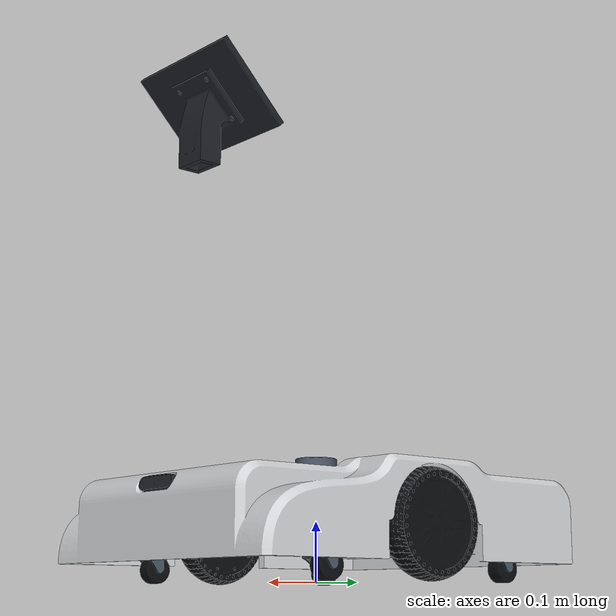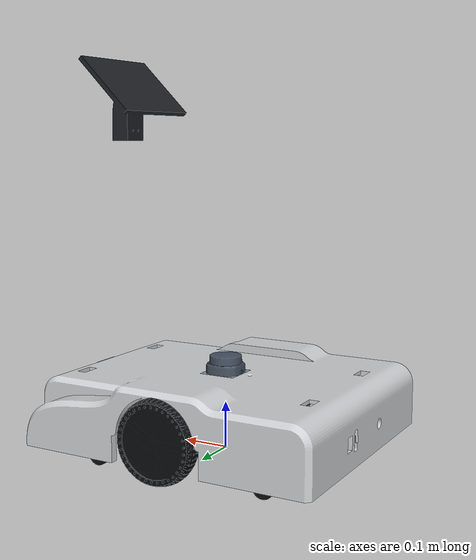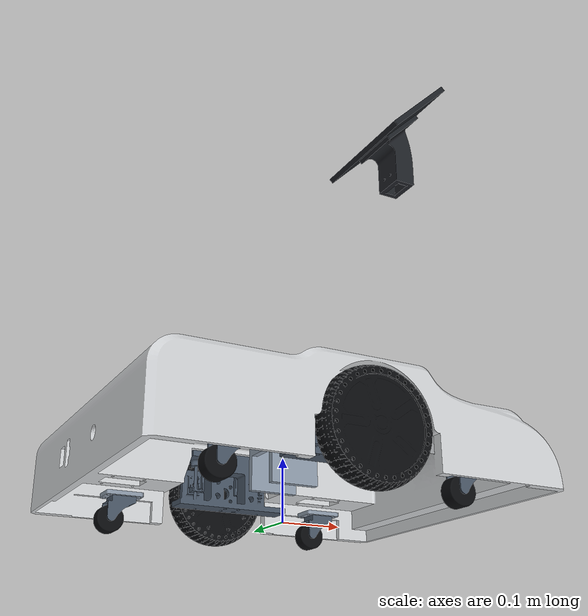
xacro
<?xml version="1.0"?>
<!-- Generated by prepare_physics_urdf.py; edit source Xacro and physics.json. -->
<robot xmlns:xacro="http://www.ros.org/wiki/xacro" name="capstone_amr">

  <xacro:arg name="mesh_prefix" default="../meshes/visual"/>
  <xacro:property name="mesh_prefix" value="$(arg mesh_prefix)"/>

  <xacro:property name="wheel_radius" value="0.086"/>
  <xacro:property name="wheel_width" value="0.0446"/>
  <xacro:property name="wheel_track" value="0.529"/>
  <xacro:property name="drive_axle_x" value="0.0"/>
  <xacro:property name="drive_wheel_mesh_scale" value="0.001004086"/>
  <xacro:property name="drive_wheel_mesh_y" value="0.029118494"/>

  <!-- v28 base_link inertia box, retained until the robot is reweighed. -->
  <xacro:property name="base_inertia_length" value="0.640"/>
  <xacro:property name="base_inertia_width" value="0.520"/>
  <xacro:property name="base_inertia_height" value="0.085"/>
  <xacro:property name="base_inertia_center_z" value="-0.0115"/>

  <xacro:property name="housing_length" value="0.656"/>
  <xacro:property name="housing_width" value="0.556"/>
  <xacro:property name="housing_bottom_z" value="-0.055"/>
  <xacro:property name="housing_top_z" value="0.080"/>

  <xacro:property name="camera_x" value="0.320488"/>
  <xacro:property name="camera_y" value="0.025"/>
  <xacro:property name="camera_z" value="0.061017"/>
  <xacro:property name="camera_pitch" value="${-12.0 * pi / 180.0}"/>

  <xacro:property name="chassis_mass" value="12.8"/>
  <xacro:property name="drive_wheel_mass" value="2.2"/>
  <xacro:property name="caster_mount_mass" value="0.05"/>
  <xacro:property name="caster_frame_mass" value="0.10"/>
  <xacro:property name="caster_wheel_mass" value="0.05"/>

  <!-- Placement rechecked against AMR_MASTER_Linear v80.step; unchanged from v23. -->
  <xacro:property name="lidar_mount_origin_z" value="-0.029"/>
  <xacro:property name="lidar_from_mount_z" value="0.137605"/>

  <material name="aluminium">
    <color rgba="0.55 0.60 0.66 1"/>
  </material>
  <material name="dark_metal">
    <color rgba="0.28 0.33 0.39 1"/>
  </material>
  <material name="z10t_body">
    <color rgba="0.12 0.13 0.15 1"/>
  </material>
  <material name="housing">
    <color rgba="0.82 0.83 0.84 1"/>
  </material>
  <material name="rubber">
    <color rgba="0.04 0.045 0.055 1"/>
  </material>

  <xacro:macro name="box_inertial" params="mass x y z origin_xyz">
    <inertial>
      <origin xyz="${origin_xyz}" rpy="0 0 0"/>
      <mass value="${mass}"/>
      <inertia
        ixx="${mass * (y*y + z*z) / 12.0}" ixy="0" ixz="0"
        iyy="${mass * (x*x + z*z) / 12.0}" iyz="0"
        izz="${mass * (x*x + y*y) / 12.0}"/>
    </inertial>
  </xacro:macro>

  <xacro:macro name="wheel_inertial" params="mass radius width">
    <inertial>
      <origin xyz="0 0 0" rpy="0 0 0"/>
      <mass value="${mass}"/>
      <inertia
        ixx="${mass * (3*radius*radius + width*width) / 12.0}" ixy="0" ixz="0"
        iyy="${mass * radius*radius / 2.0}" iyz="0"
        izz="${mass * (3*radius*radius + width*width) / 12.0}"/>
    </inertial>
  </xacro:macro>

  <xacro:macro name="frame_box" params="x y z sx sy sz">
    <collision>
      <origin xyz="${x} ${y} ${z}" rpy="0 0 0"/>
      <geometry><box size="${sx} ${sy} ${sz}"/></geometry>
    </collision>
  </xacro:macro>

  <link name="base_footprint"/>

  <link name="base_link">
    <xacro:box_inertial
      mass="${chassis_mass}"
      x="${base_inertia_length}" y="${base_inertia_width}" z="${base_inertia_height}"
      origin_xyz="0 0 ${base_inertia_center_z}"/>
    <!-- These four STLs are already expressed in the base_link CAD frame.
         chassis.stl also carries the rear XT90 connector. -->
    <visual>
      <origin xyz="0 0 0" rpy="0 0 0"/>
      <geometry>
        <mesh filename="${mesh_prefix}/chassis.stl" scale="0.001 0.001 0.001"/>
      </geometry>
      <material name="aluminium"/>
    </visual>
    <!-- Linear-guide suspension brackets of both drive wheels; rigid in this model. -->
    <visual>
      <origin xyz="0 0 0" rpy="0 0 0"/>
      <geometry>
        <mesh filename="${mesh_prefix}/drive_suspension.stl" scale="0.001 0.001 0.001"/>
      </geometry>
      <material name="dark_metal"/>
    </visual>
    <visual>
      <origin xyz="0 0 0" rpy="0 0 0"/>
      <geometry>
        <mesh filename="${mesh_prefix}/z10t.stl" scale="0.001 0.001 0.001"/>
      </geometry>
      <material name="z10t_body"/>
    </visual>
    <visual>
      <origin xyz="0 0 0" rpy="0 0 0"/>
      <geometry>
        <mesh filename="${mesh_prefix}/housing.stl" scale="0.001 0.001 0.001"/>
      </geometry>
      <material name="housing"/>
    </visual>
    <!-- Camera geometry is lumped into base_link like the LiDAR;
         gemini2.stl is expressed in the camera_link frame. -->
    <visual>
      <origin xyz="${camera_x} ${camera_y} ${camera_z}" rpy="0 ${camera_pitch} 0"/>
      <geometry>
        <mesh filename="${mesh_prefix}/gemini2.stl" scale="0.001 0.001 0.001"/>
      </geometry>
      <material name="z10t_body"/>
    </visual>
    <!-- LiDAR geometry is lumped into base_link together with its mass. -->
    <visual>
      <origin xyz="0 0 ${lidar_mount_origin_z}" rpy="0 0 0"/>
      <geometry>
        <mesh filename="${mesh_prefix}/lidar_mount.stl" scale="0.001 0.001 0.001"/>
      </geometry>
      <material name="aluminium"/>
    </visual>
    <visual>
      <origin xyz="0 0 ${lidar_mount_origin_z + lidar_from_mount_z}" rpy="0 0 0"/>
      <geometry>
        <mesh filename="${mesh_prefix}/lidar_body.stl" scale="0.001 0.001 0.001"/>
      </geometry>
      <material name="dark_metal"/>
    </visual>
    <collision>
      <origin xyz="0 0 ${(housing_bottom_z + housing_top_z) / 2.0}" rpy="0 0 0"/>
      <geometry>
        <box size="${housing_length} ${housing_width} ${housing_top_z - housing_bottom_z}"/>
      </geometry>
    </collision>
    <!-- Fenders over the drive wheels. -->
    <xacro:frame_box x="0" y="0.229" z="0.090" sx="0.228" sy="0.098" sz="0.020"/>
    <xacro:frame_box x="0" y="-0.229" z="0.090" sx="0.228" sy="0.098" sz="0.020"/>
    <!-- 2020 uprights. They cross the LiDAR scan plane at Z = 108.605 mm. -->
    <xacro:frame_box x="0.270" y="0.1326" z="0.066" sx="0.020" sy="0.040" sz="0.200"/>
    <xacro:frame_box x="0.270" y="-0.1326" z="0.066" sx="0.020" sy="0.040" sz="0.200"/>
    <xacro:frame_box x="-0.260" y="0.1326" z="0.066" sx="0.020" sy="0.040" sz="0.200"/>
    <xacro:frame_box x="-0.260" y="-0.1326" z="0.066" sx="0.020" sy="0.040" sz="0.200"/>
    <!-- Top side rails, front cross member and Z10T mast. -->
    <xacro:frame_box x="0.005" y="0.1326" z="0.156" sx="0.510" sy="0.040" sz="0.020"/>
    <xacro:frame_box x="0.005" y="-0.1326" z="0.156" sx="0.510" sy="0.040" sz="0.020"/>
    <xacro:frame_box x="0.240" y="0" z="0.176" sx="0.040" sy="0.3107" sz="0.020"/>
    <xacro:frame_box x="0.250" y="0" z="0.421" sx="0.020" sy="0.040" sz="0.470"/>
    <!-- Z10T mount below the body, then the Z10T body bounds. -->
    <xacro:frame_box x="0.2372" y="0" z="0.6035" sx="0.0764" sy="0.100" sz="0.055"/>
    <xacro:frame_box x="0.2308" y="0" z="0.6925" sx="0.123" sy="0.233" sz="0.123"/>
    <!-- v3 mount: two extended walls, two upper side walls, and top plate.
         Small counterbored screw holes are omitted from collision geometry. -->
    <collision>
      <origin xyz="0 -0.035 ${lidar_mount_origin_z + 0.0475}" rpy="0 0 0"/>
      <geometry><box size="0.080 0.010 0.105"/></geometry>
    </collision>
    <collision>
      <origin xyz="0 0.035 ${lidar_mount_origin_z + 0.0475}" rpy="0 0 0"/>
      <geometry><box size="0.080 0.010 0.105"/></geometry>
    </collision>
    <collision>
      <origin xyz="-0.035 0 ${lidar_mount_origin_z + 0.075}" rpy="0 0 0"/>
      <geometry><box size="0.010 0.060 0.050"/></geometry>
    </collision>
    <collision>
      <origin xyz="0.035 0 ${lidar_mount_origin_z + 0.075}" rpy="0 0 0"/>
      <geometry><box size="0.010 0.060 0.050"/></geometry>
    </collision>
    <collision>
      <origin xyz="0 0 ${lidar_mount_origin_z + 0.105}" rpy="0 0 0"/>
      <geometry><box size="0.080 0.080 0.010"/></geometry>
    </collision>
    <collision>
      <origin xyz="0 0 ${lidar_mount_origin_z + lidar_from_mount_z - 0.008345}" rpy="0 0 0"/>
      <geometry><cylinder radius="0.0385" length="0.038884"/></geometry>
    </collision>
  </link>

  <joint name="base_footprint_joint" type="fixed">
    <parent link="base_footprint"/>
    <child link="base_link"/>
    <origin xyz="0 0 ${wheel_radius}" rpy="0 0 0"/>
  </joint>

  <xacro:macro name="drive_wheel" params="side y mesh_y mesh_roll">
    <link name="${side}_drive_wheel_link">
      <xacro:wheel_inertial mass="${drive_wheel_mass}" radius="${wheel_radius}" width="${wheel_width}"/>
      <visual>
        <origin xyz="0 ${mesh_y} 0" rpy="${mesh_roll} 0 0"/>
        <geometry>
          <mesh filename="${mesh_prefix}/nurirobot_wa171_3d_v5.stl"
                scale="${drive_wheel_mesh_scale} ${drive_wheel_mesh_scale} ${drive_wheel_mesh_scale}"/>
        </geometry>
        <material name="rubber"/>
      </visual>
      <collision>
        <origin xyz="0 0 0" rpy="1.57079632679 0 0"/>
        <geometry>
          <cylinder radius="${wheel_radius}" length="${wheel_width}"/>
        </geometry>
      </collision>
    </link>
    <joint name="${side}_drive_wheel_joint" type="continuous">
      <parent link="base_link"/>
      <child link="${side}_drive_wheel_link"/>
      <origin xyz="${drive_axle_x} ${y} 0" rpy="0 0 0"/>
      <axis xyz="0 1 0"/>
      <dynamics damping="0.1" friction="0.0"/>
      <limit effort="12.357" velocity="18.849555922"/>
    </joint>
  </xacro:macro>

  <!-- Configure only these joints as Velocity Drive in Isaac Sim. -->
  <xacro:drive_wheel side="left" y="${wheel_track / 2.0}" mesh_y="${-drive_wheel_mesh_y}" mesh_roll="0"/>
  <xacro:drive_wheel side="right" y="${-wheel_track / 2.0}" mesh_y="${drive_wheel_mesh_y}" mesh_roll="3.14159265359"/>

  <xacro:macro name="passive_caster" params="prefix x y">
    <link name="${prefix}_caster_mount_link">
      <xacro:box_inertial mass="${caster_mount_mass}"
        x="0.064" y="0.046" z="0.0069" origin_xyz="0 0 -0.00095"/>
      <visual>
        <origin xyz="0 0 0.0025" rpy="0 0 0"/>
        <geometry><mesh filename="${mesh_prefix}/caster_mount_fixed.stl" scale="0.001 0.001 0.001"/></geometry>
        <material name="aluminium"/>
      </visual>
      <collision>
        <origin xyz="0 0 -0.00095" rpy="0 0 0"/>
        <geometry><box size="0.064 0.046 0.0069"/></geometry>
      </collision>
    </link>
    <joint name="${prefix}_caster_mount_joint" type="fixed">
      <parent link="base_link"/>
      <child link="${prefix}_caster_mount_link"/>
      <origin xyz="${x} ${y} -0.0215" rpy="0 0 0"/>
    </joint>

    <link name="${prefix}_caster_swivel_link">
      <xacro:box_inertial mass="${caster_frame_mass}"
        x="0.048031" y="0.032" z="0.042576" origin_xyz="0.003485 0 -0.025688"/>
      <visual>
        <origin xyz="0 0 0" rpy="0 0 0"/>
        <geometry><mesh filename="${mesh_prefix}/caster_swivel_frame.stl" scale="0.001 0.001 0.001"/></geometry>
        <material name="dark_metal"/>
      </visual>
    </link>
    <joint name="${prefix}_caster_swivel_joint" type="continuous">
      <parent link="${prefix}_caster_mount_link"/>
      <child link="${prefix}_caster_swivel_link"/>
      <origin xyz="0 0 0" rpy="0 0 3.14159265359"/>
      <axis xyz="0 0 1"/>
      <dynamics damping="0.0" friction="0.0"/>
    </joint>

    <link name="${prefix}_caster_wheel_link">
      <xacro:wheel_inertial mass="${caster_wheel_mass}" radius="0.0225" width="0.025"/>
      <visual>
        <origin xyz="-0.020 0 0.042" rpy="0 0 0"/>
        <geometry><mesh filename="${mesh_prefix}/caster_wheel.stl" scale="0.001 0.001 0.001"/></geometry>
        <material name="rubber"/>
      </visual>
      <collision>
        <origin xyz="0 0 0" rpy="1.57079632679 0 0"/>
        <geometry><cylinder radius="0.0225" length="0.025"/></geometry>
      </collision>
    </link>
    <joint name="${prefix}_caster_wheel_joint" type="continuous">
      <parent link="${prefix}_caster_swivel_link"/>
      <child link="${prefix}_caster_wheel_link"/>
      <origin xyz="0.020 0 -0.042" rpy="0 0 0"/>
      <axis xyz="0 1 0"/>
      <dynamics damping="0.0" friction="0.0"/>
    </joint>
  </xacro:macro>

  <!-- Keep all caster swivel and wheel joints passive (Drive=None) in Isaac Sim. -->
  <xacro:passive_caster prefix="front_left" x="0.190" y="0.220"/>
  <xacro:passive_caster prefix="front_right" x="0.190" y="-0.220"/>
  <xacro:passive_caster prefix="rear_left" x="-0.190" y="0.220"/>
  <xacro:passive_caster prefix="rear_right" x="-0.190" y="-0.220"/>

  <link name="lidar_mount_link"/>
  <joint name="lidar_mount_joint" type="fixed">
    <parent link="base_link"/>
    <child link="lidar_mount_link"/>
    <origin xyz="0 0 ${lidar_mount_origin_z}" rpy="0 0 0"/>
  </joint>

  <link name="lidar_link"/>
  <joint name="lidar_joint" type="fixed">
    <parent link="lidar_mount_link"/>
    <child link="lidar_link"/>
    <origin xyz="0 0 ${lidar_from_mount_z}" rpy="0 0 0"/>
  </joint>

  <!-- Real S2 scan axes: +X points backwards relative to the robot. -->
  <link name="laser"/>
  <joint name="laser_joint" type="fixed">
    <parent link="lidar_link"/>
    <child link="laser"/>
    <origin xyz="0 0 0" rpy="0 0 3.141592653589793"/>
  </joint>

  <!-- LSM6DSV16X chip centre measured in CAD (v119 board position, 2026-10-23);
       axes match base_link. The EKF fuses only gyro Z, so this offset does
       not change the fused yaw rate. -->
  <link name="imu_link"/>
  <joint name="imu_joint" type="fixed">
    <parent link="base_link"/>
    <child link="imu_link"/>
    <origin xyz="0.097 0 0.021" rpy="0 0 0"/>
  </joint>

  <link name="camera_link"/>
  <joint name="camera_joint" type="fixed">
    <parent link="base_link"/>
    <child link="camera_link"/>
    <origin xyz="${camera_x} ${camera_y} ${camera_z}" rpy="0 ${camera_pitch} 0"/>
  </joint>

</robot>
